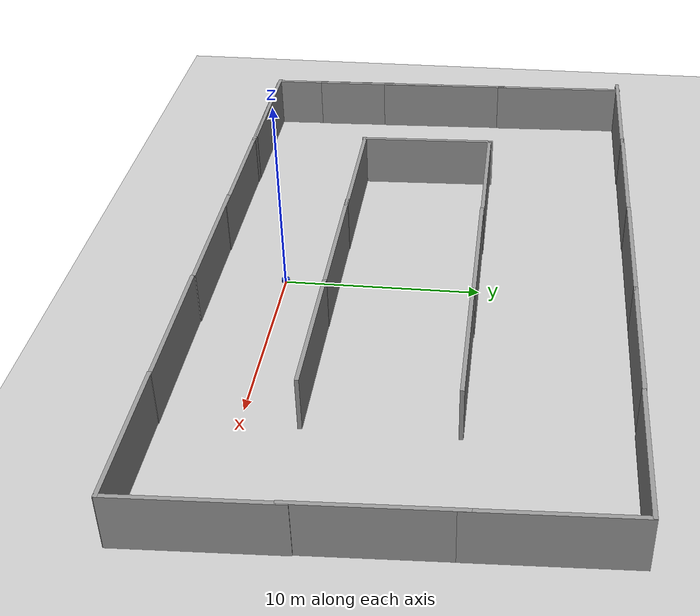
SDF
<sdf version="1.7">
 <world name="default">
  <model name="ground_plane">
   <static>1</static>
   <link name="link">
    <collision name="collision">
     <geometry><plane><normal>0 0 1</normal><size>100 100</size></plane></geometry>
     <surface><friction><ode><mu>100</mu><mu2>50</mu2></ode></friction></surface>
    </collision>
    <visual name="visual">
     <cast_shadows>0</cast_shadows>
     <geometry><plane><normal>0 0 1</normal><size>100 100</size></plane></geometry>
     <material>
      <script><uri>file://media/materials/scripts/gazebo.material</uri><name>Gazebo/Grey</name></script>
     </material>
    </visual>
   </link>
  </model>
  <model name="robot">
   <link name="base_footprint">
    <inertial>
     <pose>0 0 0.110522 0 -0 0</pose>
     <mass>20.1</mass>
     <inertia><ixx>0.253764</ixx><ixy>0</ixy><ixz>0</ixz><iyy>0.253764</iyy><iyz>0</iyz><izz>0.41</izz></inertia>
    </inertial>
    <collision name="base_footprint_fixed_joint_lump__base_link_collision">
     <pose>0 0 0.11 0 -0 0</pose>
     <geometry><cylinder><length>0.16</length><radius>0.2</radius></cylinder></geometry>
    </collision>
    <collision name="base_footprint_fixed_joint_lump__laser_link_collision_1">
     <pose>0 0 0.215 0 -0 0</pose>
     <geometry><cylinder><length>0.06</length><radius>0.05</radius></cylinder></geometry>
    </collision>
    <visual name="base_footprint_visual"><geometry><box><size>0.001 0.001 0.001</size></box></geometry></visual>
    <visual name="base_footprint_fixed_joint_lump__base_link_visual_1">
     <pose>0 0 0.11 0 -0 0</pose>
     <geometry><cylinder><length>0.16</length><radius>0.2</radius></cylinder></geometry>
     <material>
      <script><name>Gazebo/Blue</name><uri>file://media/materials/scripts/gazebo.material</uri></script>
     </material>
    </visual>
    <visual name="base_footprint_fixed_joint_lump__laser_link_visual_2">
     <pose>0 0 0.215 0 -0 0</pose>
     <geometry><cylinder><length>0.05</length><radius>0.05</radius></cylinder></geometry>
     <material>
      <script><name>Gazebo/Black</name><uri>file://media/materials/scripts/gazebo.material</uri></script>
     </material>
    </visual>
    <sensor name="rplidar" type="ray">
     <visualize>1</visualize>
     <update_rate>10</update_rate>
     <ray>
      <scan>
       <horizontal>
        <samples>720</samples>
        <resolution>1</resolution>
        <min_angle>-3.14</min_angle>
        <max_angle>3.14</max_angle>
       </horizontal>
       <vertical><samples>1</samples><min_angle>0</min_angle><max_angle>0</max_angle></vertical>
      </scan>
      <range><min>0.1</min><max>20</max><resolution>0.01</resolution></range>
      <noise><type>gaussian</type><mean>0</mean><stddev>0.01</stddev></noise>
     </ray>
     <plugin name="gazebo_rplidar" filename="libgazebo_ros_laser.so">
      <topicName>scan</topicName>
      <frameName>laser_link</frameName>
      <robotNamespace>/</robotNamespace>
     </plugin>
     <pose>0 0 0.215 0 -0 0</pose>
    </sensor>
   </link>
   <joint name="back_caster_joint" type="revolute">
    <pose relative_to="base_footprint">0.18 0 0.015 0 -0 0</pose>
    <parent>base_footprint</parent>
    <child>back_caster_link</child>
    <axis>
     <xyz>0 1 0</xyz>
     <limit><lower>-1e+16</lower><upper>1e+16</upper></limit>
     <dynamics><spring_reference>0</spring_reference><spring_stiffness>0</spring_stiffness></dynamics>
    </axis>
   </joint>
   <link name="back_caster_link">
    <pose relative_to="back_caster_joint">0 0 0 0 -0 0</pose>
    <inertial>
     <mass>0.5</mass>
     <inertia><ixx>4.5e-05</ixx><ixy>0</ixy><ixz>0</ixz><iyy>4.5e-05</iyy><iyz>0</iyz><izz>4.5e-05</izz></inertia>
    </inertial>
    <collision name="back_caster_link_collision">
     <geometry><sphere><radius>0.015</radius></sphere></geometry>
    </collision>
    <visual name="back_caster_link_visual">
     <geometry><sphere><radius>0.015</radius></sphere></geometry>
     <material>
      <script><name>Gazebo/Black</name><uri>file://media/materials/scripts/gazebo.material</uri></script>
     </material>
    </visual>
   </link>
   <joint name="front_caster_joint" type="revolute">
    <pose relative_to="base_footprint">-0.18 0 0.015 0 -0 0</pose>
    <parent>base_footprint</parent>
    <child>front_caster_link</child>
    <axis>
     <xyz>0 1 0</xyz>
     <limit><lower>-1e+16</lower><upper>1e+16</upper></limit>
     <dynamics><spring_reference>0</spring_reference><spring_stiffness>0</spring_stiffness></dynamics>
    </axis>
   </joint>
   <link name="front_caster_link">
    <pose relative_to="front_caster_joint">0 0 0 0 -0 0</pose>
    <inertial>
     <mass>0.5</mass>
     <inertia><ixx>4.5e-05</ixx><ixy>0</ixy><ixz>0</ixz><iyy>4.5e-05</iyy><iyz>0</iyz><izz>4.5e-05</izz></inertia>
    </inertial>
    <collision name="front_caster_link_collision">
     <geometry><sphere><radius>0.015</radius></sphere></geometry>
    </collision>
    <visual name="front_caster_link_visual">
     <geometry><sphere><radius>0.015</radius></sphere></geometry>
     <material>
      <script><name>Gazebo/Black</name><uri>file://media/materials/scripts/gazebo.material</uri></script>
     </material>
    </visual>
   </link>
   <joint name="left_wheel_joint" type="revolute">
    <pose relative_to="base_footprint">0 0.19 0.06 0 -0 0</pose>
    <parent>base_footprint</parent>
    <child>left_wheel_link</child>
    <axis>
     <xyz>0 1 0</xyz>
     <limit><lower>-1e+16</lower><upper>1e+16</upper></limit>
     <dynamics><spring_reference>0</spring_reference><spring_stiffness>0</spring_stiffness></dynamics>
    </axis>
   </joint>
   <link name="left_wheel_link">
    <pose relative_to="left_wheel_joint">0 0 0 0 -0 0</pose>
    <inertial>
     <mass>2</mass>
     <inertia>
      <ixx>0.00190417</ixx>
      <ixy>0</ixy>
      <ixz>0</ixz>
      <iyy>0.00190417</iyy>
      <iyz>0</iyz>
      <izz>0.0036</izz>
     </inertia>
    </inertial>
    <collision name="left_wheel_link_collision">
     <pose>0 0 0 1.5708 -0 0</pose>
     <geometry><cylinder><length>0.025</length><radius>0.06</radius></cylinder></geometry>
    </collision>
    <visual name="left_wheel_link_visual">
     <pose>0 0 0 1.5708 -0 0</pose>
     <geometry><cylinder><length>0.025</length><radius>0.06</radius></cylinder></geometry>
     <material>
      <script><name>Gazebo/Gray</name><uri>file://media/materials/scripts/gazebo.material</uri></script>
     </material>
    </visual>
   </link>
   <joint name="right_wheel_joint" type="revolute">
    <pose relative_to="base_footprint">0 -0.19 0.06 0 -0 0</pose>
    <parent>base_footprint</parent>
    <child>right_wheel_link</child>
    <axis>
     <xyz>0 1 0</xyz>
     <limit><lower>-1e+16</lower><upper>1e+16</upper></limit>
     <dynamics><spring_reference>0</spring_reference><spring_stiffness>0</spring_stiffness></dynamics>
    </axis>
   </joint>
   <link name="right_wheel_link">
    <pose relative_to="right_wheel_joint">0 0 0 0 -0 0</pose>
    <inertial>
     <mass>2</mass>
     <inertia>
      <ixx>0.00190417</ixx>
      <ixy>0</ixy>
      <ixz>0</ixz>
      <iyy>0.00190417</iyy>
      <iyz>0</iyz>
      <izz>0.0036</izz>
     </inertia>
    </inertial>
    <collision name="right_wheel_link_collision">
     <pose>0 0 0 1.5708 -0 0</pose>
     <geometry><cylinder><length>0.025</length><radius>0.06</radius></cylinder></geometry>
    </collision>
    <visual name="right_wheel_link_visual">
     <pose>0 0 0 1.5708 -0 0</pose>
     <geometry><cylinder><length>0.025</length><radius>0.06</radius></cylinder></geometry>
     <material>
      <script><name>Gazebo/Gray</name><uri>file://media/materials/scripts/gazebo.material</uri></script>
     </material>
    </visual>
   </link>
   <static>0</static>
   <plugin name="differential_drive_controller" filename="libgazebo_ros_diff_drive.so">
    <rosDebugLevel>Debug</rosDebugLevel>
    <publishWheelTF>0</publishWheelTF>
    <robotNamespace>/</robotNamespace>
    <publishTf>1</publishTf>
    <publishWheelJointState>0</publishWheelJointState>
    <alwaysOn>1</alwaysOn>
    <updateRate>100.0</updateRate>
    <legacyMode>1</legacyMode>
    <leftJoint>left_wheel_joint</leftJoint>
    <rightJoint>right_wheel_joint</rightJoint>
    <wheelSeparation>0.38</wheelSeparation>
    <wheelDiameter>0.12</wheelDiameter>
    <broadcastTF>1</broadcastTF>
    <wheelTorque>30</wheelTorque>
    <wheelAcceleration>1.8</wheelAcceleration>
    <commandTopic>cmd_vel</commandTopic>
    <odometryFrame>/odom</odometryFrame>
    <odometryTopic>odom</odometryTopic>
    <robotBaseFrame>/base_footprint</robotBaseFrame>
   </plugin>
   <pose>-0.000763 0.000871 0 -0 -0 -3.5e-05</pose>
  </model>
  <model name="grey_wall">
   <static>1</static>
   <link name="link">
    <pose>0 0 1.4 0 -0 0</pose>
    <collision name="collision"><geometry><box><size>7.5 0.2 2.8</size></box></geometry></collision>
    <visual name="visual">
     <cast_shadows>0</cast_shadows>
     <geometry><box><size>7.5 0.2 2.8</size></box></geometry>
     <material>
      <script>
       <uri>model://grey_wall/materials/scripts</uri>
       <uri>model://grey_wall/materials/textures</uri>
       <name>vrc/grey_wall</name>
      </script>
     </material>
    </visual>
   </link>
   <pose>-0.170634 2.73819 0 0 -0 0</pose>
  </model>
  <model name="grey_wall_clone">
   <static>1</static>
   <link name="link">
    <pose>0 0 1.4 0 -0 0</pose>
    <collision name="collision"><geometry><box><size>7.5 0.2 2.8</size></box></geometry></collision>
    <visual name="visual">
     <cast_shadows>0</cast_shadows>
     <geometry><box><size>7.5 0.2 2.8</size></box></geometry>
     <material>
      <script>
       <uri>model://grey_wall/materials/scripts</uri>
       <uri>model://grey_wall/materials/textures</uri>
       <name>vrc/grey_wall</name>
      </script>
     </material>
    </visual>
   </link>
   <pose>0.041162 -3.60954 0 0 -0 0</pose>
  </model>
  <model name="grey_wall_clone_0">
   <static>1</static>
   <link name="link">
    <pose>0 0 1.4 0 -0 0</pose>
    <collision name="collision"><geometry><box><size>7.5 0.2 2.8</size></box></geometry></collision>
    <visual name="visual">
     <cast_shadows>0</cast_shadows>
     <geometry><box><size>7.5 0.2 2.8</size></box></geometry>
     <material>
      <script>
       <uri>model://grey_wall/materials/scripts</uri>
       <uri>model://grey_wall/materials/textures</uri>
       <name>vrc/grey_wall</name>
      </script>
     </material>
    </visual>
   </link>
   <pose>-7.03303 2.76913 0 0 -0 0</pose>
  </model>
  <model name="grey_wall_clone_1">
   <static>1</static>
   <link name="link">
    <pose>0 0 1.4 0 -0 0</pose>
    <collision name="collision"><geometry><box><size>7.5 0.2 2.8</size></box></geometry></collision>
    <visual name="visual">
     <cast_shadows>0</cast_shadows>
     <geometry><box><size>7.5 0.2 2.8</size></box></geometry>
     <material>
      <script>
       <uri>model://grey_wall/materials/scripts</uri>
       <uri>model://grey_wall/materials/textures</uri>
       <name>vrc/grey_wall</name>
      </script>
     </material>
    </visual>
   </link>
   <pose>-6.31655 -3.578 0 0 -0 0</pose>
  </model>
  <model name="grey_wall_clone_2">
   <static>1</static>
   <link name="link">
    <pose>0 0 1.4 0 -0 0</pose>
    <collision name="collision"><geometry><box><size>7.5 0.2 2.8</size></box></geometry></collision>
    <visual name="visual">
     <cast_shadows>0</cast_shadows>
     <geometry><box><size>7.5 0.2 2.8</size></box></geometry>
     <material>
      <script>
       <uri>model://grey_wall/materials/scripts</uri>
       <uri>model://grey_wall/materials/textures</uri>
       <name>vrc/grey_wall</name>
      </script>
     </material>
    </visual>
   </link>
   <pose>-17.7698 2.82025 0 0 0 -1.53015</pose>
  </model>
  <model name="grey_wall_clone_2_clone">
   <static>1</static>
   <link name="link">
    <pose>0 0 1.4 0 -0 0</pose>
    <collision name="collision"><geometry><box><size>7.5 0.2 2.8</size></box></geometry></collision>
    <visual name="visual">
     <cast_shadows>0</cast_shadows>
     <geometry><box><size>7.5 0.2 2.8</size></box></geometry>
     <material>
      <script>
       <uri>model://grey_wall/materials/scripts</uri>
       <uri>model://grey_wall/materials/textures</uri>
       <name>vrc/grey_wall</name>
      </script>
     </material>
    </visual>
   </link>
   <pose>-17.9069 6.76426 0 0 0 -1.53015</pose>
  </model>
  <model name="grey_wall_clone_0_clone">
   <static>1</static>
   <link name="link">
    <pose>0 0 1.4 0 -0 0</pose>
    <collision name="collision"><geometry><box><size>7.5 0.2 2.8</size></box></geometry></collision>
    <visual name="visual">
     <cast_shadows>0</cast_shadows>
     <geometry><box><size>7.5 0.2 2.8</size></box></geometry>
     <material>
      <script>
       <uri>model://grey_wall/materials/scripts</uri>
       <uri>model://grey_wall/materials/textures</uri>
       <name>vrc/grey_wall</name>
      </script>
     </material>
    </visual>
   </link>
   <pose>-13.5605 -3.55391 0 0 -0 0</pose>
  </model>
  <model name="grey_wall_clone_0_clone_0">
   <static>1</static>
   <link name="link">
    <pose>0 0 1.4 0 -0 0</pose>
    <collision name="collision"><geometry><box><size>7.5 0.2 2.8</size></box></geometry></collision>
    <visual name="visual">
     <cast_shadows>0</cast_shadows>
     <geometry><box><size>7.5 0.2 2.8</size></box></geometry>
     <material>
      <script>
       <uri>model://grey_wall/materials/scripts</uri>
       <uri>model://grey_wall/materials/textures</uri>
       <name>vrc/grey_wall</name>
      </script>
     </material>
    </visual>
   </link>
   <pose>-13.9961 -3.53222 0 0 -0 0</pose>
  </model>
  <model name="grey_wall_clone_2_clone_0">
   <static>1</static>
   <link name="link">
    <pose>0 0 1.4 0 -0 0</pose>
    <collision name="collision"><geometry><box><size>7.5 0.2 2.8</size></box></geometry></collision>
    <visual name="visual">
     <cast_shadows>0</cast_shadows>
     <geometry><box><size>7.5 0.2 2.8</size></box></geometry>
     <material>
      <script>
       <uri>model://grey_wall/materials/scripts</uri>
       <uri>model://grey_wall/materials/textures</uri>
       <name>vrc/grey_wall</name>
      </script>
     </material>
    </visual>
   </link>
   <pose>-17.696 0.145739 0 0 0 -1.53015</pose>
  </model>
  <model name="grey_wall_clone_2_clone_1">
   <static>1</static>
   <link name="link">
    <pose>0 0 1.4 0 -0 0</pose>
    <collision name="collision"><geometry><box><size>7.5 0.2 2.8</size></box></geometry></collision>
    <visual name="visual">
     <cast_shadows>0</cast_shadows>
     <geometry><box><size>7.5 0.2 2.8</size></box></geometry>
     <material>
      <script>
       <uri>model://grey_wall/materials/scripts</uri>
       <uri>model://grey_wall/materials/textures</uri>
       <name>vrc/grey_wall</name>
      </script>
     </material>
    </visual>
   </link>
   <pose>-10.7989 6.36353 0 0 0 -1.53015</pose>
  </model>
  <model name="grey_wall_clone_0_clone_1">
   <static>1</static>
   <link name="link">
    <pose>0 0 1.4 0 -0 0</pose>
    <collision name="collision"><geometry><box><size>7.5 0.2 2.8</size></box></geometry></collision>
    <visual name="visual">
     <cast_shadows>0</cast_shadows>
     <geometry><box><size>7.5 0.2 2.8</size></box></geometry>
     <material>
      <script>
       <uri>model://grey_wall/materials/scripts</uri>
       <uri>model://grey_wall/materials/textures</uri>
       <name>vrc/grey_wall</name>
      </script>
     </material>
    </visual>
   </link>
   <pose>-7.26349 9.91412 0 0 -0 0</pose>
  </model>
  <model name="grey_wall_clone_0_clone_2">
   <static>1</static>
   <link name="link">
    <pose>0 0 1.4 0 -0 0</pose>
    <collision name="collision"><geometry><box><size>7.5 0.2 2.8</size></box></geometry></collision>
    <visual name="visual">
     <cast_shadows>0</cast_shadows>
     <geometry><box><size>7.5 0.2 2.8</size></box></geometry>
     <material>
      <script>
       <uri>model://grey_wall/materials/scripts</uri>
       <uri>model://grey_wall/materials/textures</uri>
       <name>vrc/grey_wall</name>
      </script>
     </material>
    </visual>
   </link>
   <pose>0.051756 9.87855 0 0 -0 0</pose>
  </model>
  <model name="grey_wall_clone_0_clone_3">
   <static>1</static>
   <link name="link">
    <pose>0 0 1.4 0 -0 0</pose>
    <collision name="collision"><geometry><box><size>7.5 0.2 2.8</size></box></geometry></collision>
    <visual name="visual">
     <cast_shadows>0</cast_shadows>
     <geometry><box><size>7.5 0.2 2.8</size></box></geometry>
     <material>
      <script>
       <uri>model://grey_wall/materials/scripts</uri>
       <uri>model://grey_wall/materials/textures</uri>
       <name>vrc/grey_wall</name>
      </script>
     </material>
    </visual>
   </link>
   <pose>7.27235 9.83553 0 0 -0 0</pose>
  </model>
  <model name="grey_wall_clone_0_clone_4">
   <static>1</static>
   <link name="link">
    <pose>0 0 1.4 0 -0 0</pose>
    <collision name="collision"><geometry><box><size>7.5 0.2 2.8</size></box></geometry></collision>
    <visual name="visual">
     <cast_shadows>0</cast_shadows>
     <geometry><box><size>7.5 0.2 2.8</size></box></geometry>
     <material>
      <script>
       <uri>model://grey_wall/materials/scripts</uri>
       <uri>model://grey_wall/materials/textures</uri>
       <name>vrc/grey_wall</name>
      </script>
     </material>
    </visual>
   </link>
   <pose>7.26445 2.71881 0 0 -0 0</pose>
  </model>
  <model name="grey_wall_clone_0_clone_5">
   <static>1</static>
   <link name="link">
    <pose>0 0 1.4 0 -0 0</pose>
    <collision name="collision"><geometry><box><size>7.5 0.2 2.8</size></box></geometry></collision>
    <visual name="visual">
     <cast_shadows>0</cast_shadows>
     <geometry><box><size>7.5 0.2 2.8</size></box></geometry>
     <material>
      <script>
       <uri>model://grey_wall/materials/scripts</uri>
       <uri>model://grey_wall/materials/textures</uri>
       <name>vrc/grey_wall</name>
      </script>
     </material>
    </visual>
   </link>
   <pose>7.52482 -3.65593 0 0 -0 0</pose>
  </model>
  <model name="grey_wall_clone_0_clone_6">
   <static>1</static>
   <link name="link">
    <pose>0 0 1.4 0 -0 0</pose>
    <collision name="collision"><geometry><box><size>7.5 0.2 2.8</size></box></geometry></collision>
    <visual name="visual">
     <cast_shadows>0</cast_shadows>
     <geometry><box><size>7.5 0.2 2.8</size></box></geometry>
     <material>
      <script>
       <uri>model://grey_wall/materials/scripts</uri>
       <uri>model://grey_wall/materials/textures</uri>
       <name>vrc/grey_wall</name>
      </script>
     </material>
    </visual>
   </link>
   <pose>14.8006 -3.6881 0 0 -0 0</pose>
  </model>
  <model name="grey_wall_clone_2_clone_1_clone">
   <static>1</static>
   <link name="link">
    <pose>0 0 1.4 0 -0 0</pose>
    <collision name="collision"><geometry><box><size>7.5 0.2 2.8</size></box></geometry></collision>
    <visual name="visual">
     <cast_shadows>0</cast_shadows>
     <geometry><box><size>7.5 0.2 2.8</size></box></geometry>
     <material>
      <script>
       <uri>model://grey_wall/materials/scripts</uri>
       <uri>model://grey_wall/materials/textures</uri>
       <name>vrc/grey_wall</name>
      </script>
     </material>
    </visual>
   </link>
   <pose>18.306 -0.017489 0 0 0 -1.53015</pose>
  </model>
  <model name="grey_wall_clone_2_clone_1_clone_0">
   <static>1</static>
   <link name="link">
    <pose>0 0 1.4 0 -0 0</pose>
    <collision name="collision"><geometry><box><size>7.5 0.2 2.8</size></box></geometry></collision>
    <visual name="visual">
     <cast_shadows>0</cast_shadows>
     <geometry><box><size>7.5 0.2 2.8</size></box></geometry>
     <material>
      <script>
       <uri>model://grey_wall/materials/scripts</uri>
       <uri>model://grey_wall/materials/textures</uri>
       <name>vrc/grey_wall</name>
      </script>
     </material>
    </visual>
   </link>
   <pose>17.9832 6.91844 0 0 0 -1.53015</pose>
  </model>
  <model name="grey_wall_clone_2_clone_1_clone_1">
   <static>1</static>
   <link name="link">
    <pose>0 0 1.4 0 -0 0</pose>
    <collision name="collision"><geometry><box><size>7.5 0.2 2.8</size></box></geometry></collision>
    <visual name="visual">
     <cast_shadows>0</cast_shadows>
     <geometry><box><size>7.5 0.2 2.8</size></box></geometry>
     <material>
      <script>
       <uri>model://grey_wall/materials/scripts</uri>
       <uri>model://grey_wall/materials/textures</uri>
       <name>vrc/grey_wall</name>
      </script>
     </material>
    </visual>
   </link>
   <pose>17.7076 13.8442 0 0 0 -1.53015</pose>
  </model>
  <model name="grey_wall_clone_0_clone_3_clone">
   <static>1</static>
   <link name="link">
    <pose>0 0 1.4 0 -0 0</pose>
    <collision name="collision"><geometry><box><size>7.5 0.2 2.8</size></box></geometry></collision>
    <visual name="visual">
     <cast_shadows>0</cast_shadows>
     <geometry><box><size>7.5 0.2 2.8</size></box></geometry>
     <material>
      <script>
       <uri>model://grey_wall/materials/scripts</uri>
       <uri>model://grey_wall/materials/textures</uri>
       <name>vrc/grey_wall</name>
      </script>
     </material>
    </visual>
   </link>
   <pose>13.8709 17.4977 0 0 -0 0</pose>
  </model>
  <model name="grey_wall_clone_0_clone_3_clone_0">
   <static>1</static>
   <link name="link">
    <pose>0 0 1.4 0 -0 0</pose>
    <collision name="collision"><geometry><box><size>7.5 0.2 2.8</size></box></geometry></collision>
    <visual name="visual">
     <cast_shadows>0</cast_shadows>
     <geometry><box><size>7.5 0.2 2.8</size></box></geometry>
     <material>
      <script>
       <uri>model://grey_wall/materials/scripts</uri>
       <uri>model://grey_wall/materials/textures</uri>
       <name>vrc/grey_wall</name>
      </script>
     </material>
    </visual>
   </link>
   <pose>6.40395 17.5247 0 0 -0 0</pose>
  </model>
  <model name="grey_wall_clone_0_clone_3_clone_1">
   <static>1</static>
   <link name="link">
    <pose>0 0 1.4 0 -0 0</pose>
    <collision name="collision"><geometry><box><size>7.5 0.2 2.8</size></box></geometry></collision>
    <visual name="visual">
     <cast_shadows>0</cast_shadows>
     <geometry><box><size>7.5 0.2 2.8</size></box></geometry>
     <material>
      <script>
       <uri>model://grey_wall/materials/scripts</uri>
       <uri>model://grey_wall/materials/textures</uri>
       <name>vrc/grey_wall</name>
      </script>
     </material>
    </visual>
   </link>
   <pose>-0.785906 17.5267 0 0 -0 0</pose>
  </model>
  <model name="grey_wall_clone_0_clone_3_clone_2">
   <static>1</static>
   <link name="link">
    <pose>0 0 1.4 0 -0 0</pose>
    <collision name="collision"><geometry><box><size>7.5 0.2 2.8</size></box></geometry></collision>
    <visual name="visual">
     <cast_shadows>0</cast_shadows>
     <geometry><box><size>7.5 0.2 2.8</size></box></geometry>
     <material>
      <script>
       <uri>model://grey_wall/materials/scripts</uri>
       <uri>model://grey_wall/materials/textures</uri>
       <name>vrc/grey_wall</name>
      </script>
     </material>
    </visual>
   </link>
   <pose>-8.25423 17.5063 0 0 -0 0</pose>
  </model>
  <model name="grey_wall_clone_0_clone_3_clone_3">
   <static>1</static>
   <link name="link">
    <pose>0 0 1.4 0 -0 0</pose>
    <collision name="collision"><geometry><box><size>7.5 0.2 2.8</size></box></geometry></collision>
    <visual name="visual">
     <cast_shadows>0</cast_shadows>
     <geometry><box><size>7.5 0.2 2.8</size></box></geometry>
     <material>
      <script>
       <uri>model://grey_wall/materials/scripts</uri>
       <uri>model://grey_wall/materials/textures</uri>
       <name>vrc/grey_wall</name>
      </script>
     </material>
    </visual>
   </link>
   <pose>-15.3073 17.4728 0 0 -0 0</pose>
  </model>
  <model name="grey_wall_clone_2_clone_1_clone_2">
   <static>1</static>
   <link name="link">
    <pose>0 0 1.4 0 -0 0</pose>
    <collision name="collision"><geometry><box><size>7.5 0.2 2.8</size></box></geometry></collision>
    <visual name="visual">
     <cast_shadows>0</cast_shadows>
     <geometry><box><size>7.5 0.2 2.8</size></box></geometry>
     <material>
      <script>
       <uri>model://grey_wall/materials/scripts</uri>
       <uri>model://grey_wall/materials/textures</uri>
       <name>vrc/grey_wall</name>
      </script>
     </material>
    </visual>
   </link>
   <pose>-18.1548 13.8527 0 0 0 -1.53015</pose>
  </model>
 </world>
</sdf>
